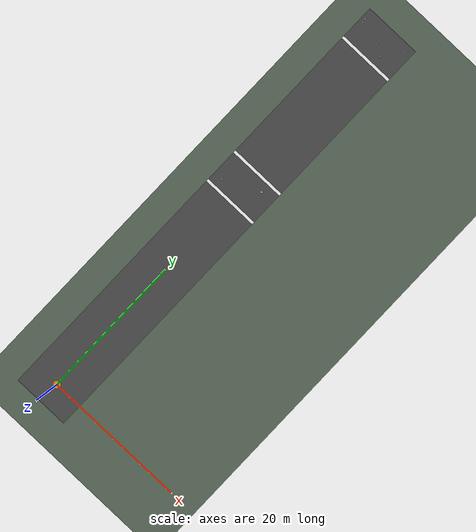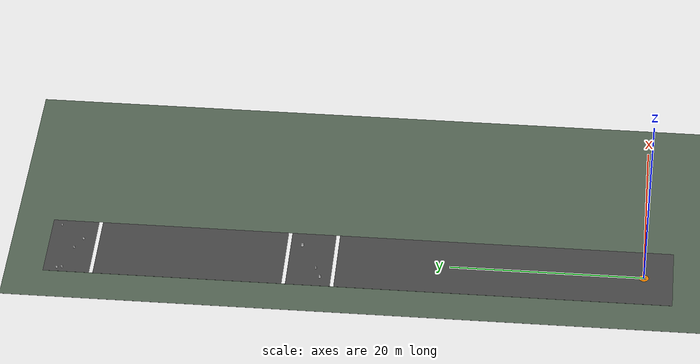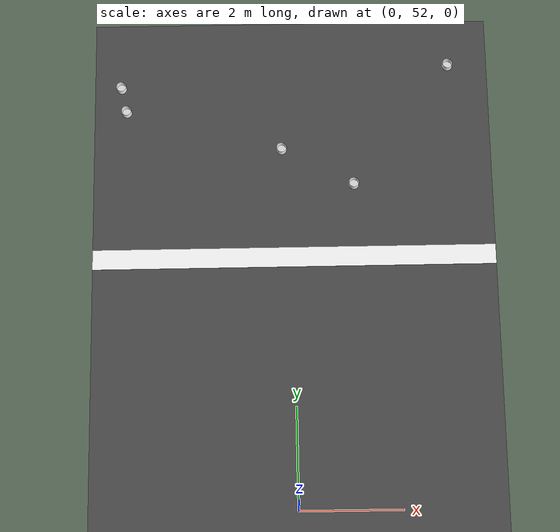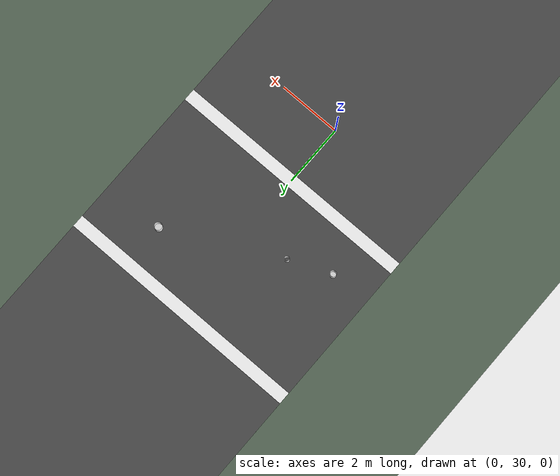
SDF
<?xml version="1.0" ?>
<sdf version="1.11">
  <world name="CUADC_UAV02">

    <!-- ===== Physics & Environment ===== -->
    <physics name="1ms" type="ignored">
      <max_step_size>0.001</max_step_size>
      <real_time_factor>1.0</real_time_factor>
    </physics>
    <gravity>0 0 -9.8</gravity>
    <magnetic_field>6e-06 2.3e-05 -4.2e-05</magnetic_field>
    <atmosphere type="adiabatic"/>

    <spherical_coordinates>
      <surface_model>EARTH_WGS84</surface_model>
      <world_frame_orientation>ENU</world_frame_orientation>
      <latitude_deg>47.397971057728974</latitude_deg>
      <longitude_deg>8.546163739800146</longitude_deg>
      <elevation>0</elevation>
    </spherical_coordinates>

    <!-- World-level system plugins (same as PX4 default) -->
    <plugin filename="gz-sim-physics-system"       name="gz::sim::systems::Physics"/>
    <plugin filename="gz-sim-user-commands-system"  name="gz::sim::systems::UserCommands"/>
    <plugin filename="gz-sim-sensors-system"        name="gz::sim::systems::Sensors">
      <render_engine>ogre2</render_engine>
    </plugin>
    <plugin filename="gz-sim-scene-broadcaster-system" name="gz::sim::systems::SceneBroadcaster"/>
    <plugin filename="gz-sim-contact-system"        name="gz::sim::systems::Contact"/>
    <plugin filename="gz-sim-imu-system"            name="gz::sim::systems::Imu"/>
    <plugin filename="gz-sim-magnetometer-system"   name="gz::sim::systems::Magnetometer"/>
    <plugin filename="gz-sim-navsat-system"         name="gz::sim::systems::NavSat"/>
    <plugin filename="gz-sim-air-pressure-system"   name="gz::sim::systems::AirPressure"/>
    <plugin filename="gz-sim-air-speed-system"      name="gz::sim::systems::AirSpeed"/>
    <plugin filename="gz-sim-apply-link-wrench-system" name="gz::sim::systems::ApplyLinkWrench"/>
    <plugin filename="gz-sim-wind-system"           name="gz::sim::systems::Wind"/>

    <!-- ===== Scene ===== -->
    <scene>
      <ambient>0.5 0.5 0.5 1.0</ambient>
      <background>0.5 0.6 0.8 1.0</background>
      <shadows>true</shadows>
      <grid>false</grid>
    </scene>

    <!-- ===== Sunlight ===== -->
    <light type="directional" name="sun">
      <cast_shadows>true</cast_shadows>
      <pose>0 0 100 0 0 0</pose>
      <diffuse>1.0 1.0 0.95 1</diffuse>
      <specular>0.3 0.3 0.3 1</specular>
      <attenuation>
        <range>1000</range>
        <constant>0.9</constant>
        <linear>0.01</linear>
        <quadratic>0.001</quadratic>
      </attenuation>
      <direction>0.2 -0.3 -0.9</direction>
    </light>

    <!-- ===== GUI ===== -->
    <gui fullscreen="0">
      <plugin filename="MinimalScene" name="3D View">
        <gz-gui>
          <title>3D View</title>
          <property type="bool" key="showTitleBar">false</property>
          <property type="string" key="state">docked</property>
        </gz-gui>
        <engine>ogre2</engine>
        <scene>scene</scene>
        <ambient_light>0.4 0.4 0.4</ambient_light>
        <background_color>0.8 0.8 0.8</background_color>
        <camera_pose>-20 -10 40 0 0.6 0.5</camera_pose>
      </plugin>
      <plugin filename="GzSceneManager" name="Scene Manager">
        <gz-gui>
          <property key="resizable" type="bool">false</property>
          <property key="width" type="double">5</property>
          <property key="height" type="double">5</property>
          <property key="state" type="string">floating</property>
          <property key="showTitleBar" type="bool">false</property>
        </gz-gui>
      </plugin>
      <plugin filename="InteractiveViewControl" name="Interactive view control">
        <gz-gui>
          <property key="resizable" type="bool">false</property>
          <property key="width" type="double">5</property>
          <property key="height" type="double">5</property>
          <property key="state" type="string">floating</property>
          <property key="showTitleBar" type="bool">false</property>
        </gz-gui>
      </plugin>
      <plugin filename="CameraTracking" name="Camera Tracking">
        <gz-gui>
          <property key="resizable" type="bool">false</property>
          <property key="width" type="double">5</property>
          <property key="height" type="double">5</property>
          <property key="state" type="string">floating</property>
          <property key="showTitleBar" type="bool">false</property>
        </gz-gui>
      </plugin>
      <plugin filename="TransformControl" name="Transform control">
        <gz-gui>
          <title>Transform control</title>
          <anchors target="3D View">
            <line own="left" target="left"/>
            <line own="top" target="top"/>
          </anchors>
          <property key="resizable" type="bool">false</property>
          <property key="width" type="double">230</property>
          <property key="height" type="double">50</property>
          <property key="state" type="string">floating</property>
          <property key="showTitleBar" type="bool">false</property>
          <property key="cardBackground" type="string">#666666</property>
        </gz-gui>
      </plugin>
      <plugin filename="WorldControl" name="World control">
        <gz-gui>
          <title>World control</title>
          <property type="bool" key="showTitleBar">false</property>
          <property type="bool" key="resizable">false</property>
          <property type="double" key="height">72</property>
          <property type="double" key="z">1</property>
          <property type="string" key="state">floating</property>
          <anchors target="3D View">
            <line own="left" target="left"/>
            <line own="bottom" target="bottom"/>
          </anchors>
        </gz-gui>
        <play_pause>true</play_pause>
        <step>true</step>
        <start_paused>true</start_paused>
        <use_event>true</use_event>
      </plugin>
      <plugin filename="WorldStats" name="World stats">
        <gz-gui>
          <title>World stats</title>
          <property type="bool" key="showTitleBar">false</property>
          <property type="bool" key="resizable">false</property>
          <property type="double" key="height">110</property>
          <property type="double" key="width">290</property>
          <property type="double" key="z">1</property>
          <property type="string" key="state">floating</property>
          <anchors target="3D View">
            <line own="right" target="right"/>
            <line own="bottom" target="bottom"/>
          </anchors>
        </gz-gui>
        <sim_time>true</sim_time>
        <real_time>true</real_time>
        <real_time_factor>true</real_time_factor>
        <iterations>true</iterations>
      </plugin>
      <plugin filename="ComponentInspector" name="Component inspector">
        <gz-gui>
          <property type="string" key="state">docked_collapsed</property>
        </gz-gui>
      </plugin>
      <plugin filename="EntityTree" name="Entity tree">
        <gz-gui>
          <property type="string" key="state">docked_collapsed</property>
        </gz-gui>
      </plugin>
      <!-- Downward camera display (select topic after drone spawns) -->
      <plugin filename="ImageDisplay" name="Downward Camera">
        <gz-gui>
          <title>Downward Camera</title>
          <property type="string" key="state">docked</property>
        </gz-gui>
        <topic_picker>true</topic_picker>
      </plugin>
      <plugin filename="KeyPublisher" name="Key publisher">
        <gz-gui>
          <anchors target="3D View">
            <line own="right" target="right"/>
            <line own="top" target="top"/>
          </anchors>
          <property key="resizable" type="bool">false</property>
          <property key="width" type="double">5</property>
          <property key="height" type="double">5</property>
          <property key="state" type="string">floating</property>
          <property key="showTitleBar" type="bool">false</property>
        </gz-gui>
      </plugin>
      <plugin filename="EntityContextMenuPlugin" name="Entity context menu">
        <gz-gui>
          <property key="state" type="string">floating</property>
          <property key="width" type="double">5</property>
          <property key="height" type="double">5</property>
          <property key="showTitleBar" type="bool">false</property>
        </gz-gui>
      </plugin>
    </gui>

    <!--  Ground — 300m × 300m flat plane                                  -->
    <model name="ground">
      <static>true</static>
      <pose>0 0 -0.005 0 0 0</pose>
      <link name="ground_link">
        <collision name="ground_collision">
          <geometry>
            <box>
              <size>300 300 0.01</size>
            </box>
          </geometry>
        </collision>
        <visual name="ground_visual">
          <geometry>
            <box>
              <size>300 300 0.01</size>
            </box>
          </geometry>
          <material>
            <ambient>0.3 0.35 0.3 1</ambient>
            <diffuse>0.35 0.42 0.35 1</diffuse>
            <specular>0.05 0.05 0.05 1</specular>
          </material>
        </visual>
      </link>
    </model>

    <!--  Track — dark gray runway 8m × 65m, y: -3 to 62                   -->
    <!--  Centered at (0, 29.5)                                            -->
    <model name="track">
      <static>true</static>
      <pose>0 29.5 0.005 0 0 0</pose>
      <link name="track_link">
        <collision name="track_collision">
          <geometry>
            <box>
              <size>8 65 0.01</size>
            </box>
          </geometry>
        </collision>
        <visual name="track_visual">
          <geometry>
            <box>
              <size>8 65 0.01</size>
            </box>
          </geometry>
          <material>
            <ambient>0.25 0.25 0.25 1</ambient>
            <diffuse>0.3 0.3 0.3 1</diffuse>
            <specular>0.05 0.05 0.05 1</specular>
          </material>
        </visual>
      </link>
    </model>

    <!--  Takeoff pad — orange circle Ø1m at origin (0, 0)                  -->
    <model name="takeoff_pad">
      <static>true</static>
      <pose>0 0 0.012 0 0 0</pose>
      <link name="pad_link">
        <visual name="pad_visual">
          <geometry>
            <cylinder>
              <length>0.005</length>
              <radius>0.5</radius>
            </cylinder>
          </geometry>
          <material>
            <ambient>1.0 0.5 0.0 1</ambient>
            <diffuse>1.0 0.55 0.0 1</diffuse>
            <specular>0.1 0.1 0.1 1</specular>
          </material>
        </visual>
      </link>
    </model>

    <!--  White "H" marker at origin (on the orange pad)                    -->
    <!--  Built from 3 boxes: two vertical + one horizontal                 -->
    <model name="H_marker">
      <static>true</static>
      <pose>0 0 0.016 0 0 0</pose>
      <link name="H_link">
        <!-- Left vertical bar -->
        <visual name="H_left">
          <pose>-0.15 0 0 0 0 0</pose>
          <geometry>
            <box>
              <size>0.08 0.5 0.005</size>
            </box>
          </geometry>
          <material>
            <ambient>1 1 1 1</ambient>
            <diffuse>1 1 1 1</diffuse>
          </material>
        </visual>
        <!-- Right vertical bar -->
        <visual name="H_right">
          <pose>0.15 0 0 0 0 0</pose>
          <geometry>
            <box>
              <size>0.08 0.5 0.005</size>
            </box>
          </geometry>
          <material>
            <ambient>1 1 1 1</ambient>
            <diffuse>1 1 1 1</diffuse>
          </material>
        </visual>
        <!-- Horizontal crossbar -->
        <visual name="H_cross">
          <pose>0 0 0 0 0 0</pose>
          <geometry>
            <box>
              <size>0.3 0.08 0.005</size>
            </box>
          </geometry>
          <material>
            <ambient>1 1 1 1</ambient>
            <diffuse>1 1 1 1</diffuse>
          </material>
        </visual>
      </link>
    </model>

    <!--  Gate lines — white stripes across the track                      -->
    <!--  Line 1: y = 32  (±0.2 → 31.8 .. 32.2)                            -->
    <!--  Line 2: y = 37  (±0.2 → 36.8 .. 37.2)                            -->
    <!--  Line 3: y = 57  (±0.2 → 56.8 .. 57.2)                            -->

    <model name="gate_line_1">
      <static>true</static>
      <pose>0 32 0.014 0 0 0</pose>
      <link name="line1_link">
        <visual name="line1_visual">
          <geometry>
            <box>
              <size>8 0.4 0.005</size>
            </box>
          </geometry>
          <material>
            <ambient>1 1 1 1</ambient>
            <diffuse>1 1 1 1</diffuse>
          </material>
        </visual>
      </link>
    </model>

    <model name="gate_line_2">
      <static>true</static>
      <pose>0 37 0.014 0 0 0</pose>
      <link name="line2_link">
        <visual name="line2_visual">
          <geometry>
            <box>
              <size>8 0.4 0.005</size>
            </box>
          </geometry>
          <material>
            <ambient>1 1 1 1</ambient>
            <diffuse>1 1 1 1</diffuse>
          </material>
        </visual>
      </link>
    </model>

    <model name="gate_line_3">
      <static>true</static>
      <pose>0 57 0.014 0 0 0</pose>
      <link name="line3_link">
        <visual name="line3_visual">
          <geometry>
            <box>
              <size>8 0.4 0.005</size>
            </box>
          </geometry>
          <material>
            <ambient>1 1 1 1</ambient>
            <diffuse>1 1 1 1</diffuse>
          </material>
        </visual>
      </link>
    </model>

    <!--  Region 1 — Cylinders (y:32..37), H=30cm, white hollow tubes       -->
    <!--  C1: D=15cm   C2: D=20cm   C3: D=25cm                              -->

    <!-- Cylinder 1: D=15cm, H=30cm, wall 3mm -->
    <model name="cylinder_R1_01">
      <static>true</static>
      <pose>-1.42 33.87 0.16 0 0 0</pose>
      <link name="cyl1_link">
        <collision name="cyl1_collision">
          <geometry>
            <cylinder>
              <length>0.3</length>
              <radius>0.075</radius>
            </cylinder>
          </geometry>
        </collision>
        <visual name="cyl1_visual">
          <geometry>
            <mesh><uri>file:///home/jay/px4_ws/gazebo_models/models/tube_D15_H30.obj</uri></mesh>
          </geometry>
          <material>
            <ambient>0.9 0.9 0.9 1</ambient>
            <diffuse>0.95 0.95 0.95 1</diffuse>
            <specular>0.1 0.1 0.1 1</specular>
          </material>
        </visual>
      </link>
    </model>

    <!-- Cylinder 2: D=20cm, H=30cm, wall 3mm -->
    <model name="cylinder_R1_02">
      <static>true</static>
      <pose>-2.73 33.33 0.16 0 0 0</pose>
      <link name="cyl2_link">
        <collision name="cyl2_collision">
          <geometry>
            <cylinder>
              <length>0.3</length>
              <radius>0.1</radius>
            </cylinder>
          </geometry>
        </collision>
        <visual name="cyl2_visual">
          <geometry>
            <mesh><uri>file:///home/jay/px4_ws/gazebo_models/models/tube_D20_H30.obj</uri></mesh>
          </geometry>
          <material>
            <ambient>0.9 0.9 0.9 1</ambient>
            <diffuse>0.95 0.95 0.95 1</diffuse>
            <specular>0.1 0.1 0.1 1</specular>
          </material>
        </visual>
        <visual name="cyl2_base">
          <pose>0 0 -0.1475 0 0 0</pose>
          <geometry>
            <cylinder>
              <length>0.005</length>
              <radius>0.1</radius>
            </cylinder>
          </geometry>
          <material>
            <ambient>0.8 0.8 0.8 1</ambient>
            <diffuse>0.88 0.88 0.88 1</diffuse>
            <specular>0.05 0.05 0.05 1</specular>
          </material>
        </visual>
      </link>
    </model>

    <!-- Cylinder 3: D=25cm, H=30cm, wall 3mm -->
    <model name="cylinder_R1_03">
      <static>true</static>
      <pose>2.06 35.60 0.16 0 0 0</pose>
      <link name="cyl3_link">
        <collision name="cyl3_collision">
          <geometry>
            <cylinder>
              <length>0.3</length>
              <radius>0.125</radius>
            </cylinder>
          </geometry>
        </collision>
        <visual name="cyl3_visual">
          <geometry>
            <mesh><uri>file:///home/jay/px4_ws/gazebo_models/models/tube_D25_H30.obj</uri></mesh>
          </geometry>
          <material>
            <ambient>0.9 0.9 0.9 1</ambient>
            <diffuse>0.95 0.95 0.95 1</diffuse>
            <specular>0.1 0.1 0.1 1</specular>
          </material>
        </visual>
        <visual name="cyl3_base">
          <pose>0 0 -0.1475 0 0 0</pose>
          <geometry>
            <cylinder>
              <length>0.005</length>
              <radius>0.125</radius>
            </cylinder>
          </geometry>
          <material>
            <ambient>0.8 0.8 0.8 1</ambient>
            <diffuse>0.88 0.88 0.88 1</diffuse>
            <specular>0.05 0.05 0.05 1</specular>
          </material>
        </visual>
      </link>
    </model>

    <!--  Region 2 — Cylinders (y:57..62), H=15cm, D=20cm, white tubes     -->
    <!--  3 of 5 contain 12×12cm hazard chemical signs                      -->

    <!-- Cylinder 4: D=20cm, H=15cm + hazard sign -->
    <model name="cylinder_R2_04">
      <static>true</static>
      <pose>3.20 61.01 0.085 0 0 0</pose>
      <link name="cyl4_link">
        <collision name="cyl4_collision">
          <geometry>
            <cylinder>
              <length>0.15</length>
              <radius>0.1</radius>
            </cylinder>
          </geometry>
        </collision>
        <visual name="cyl4_visual">
          <geometry>
            <mesh><uri>file:///home/jay/px4_ws/gazebo_models/models/tube_D20_H15.obj</uri></mesh>
          </geometry>
          <material>
            <ambient>0.9 0.9 0.9 1</ambient>
            <diffuse>0.95 0.95 0.95 1</diffuse>
            <specular>0.1 0.1 0.1 1</specular>
          </material>
        </visual>
        <visual name="cyl4_base">
          <pose>0 0 -0.0725 0 0 0</pose>
          <geometry>
            <cylinder>
              <length>0.005</length>
              <radius>0.1</radius>
            </cylinder>
          </geometry>
          <material>
            <ambient>0.8 0.8 0.8 1</ambient>
            <diffuse>0.88 0.88 0.88 1</diffuse>
            <specular>0.05 0.05 0.05 1</specular>
          </material>
        </visual>
      </link>
    </model>

    <!-- Hazard sign inside cylinder 4 -->
    <model name="hazard_C4">
      <static>true</static>
      <pose>3.20 61.01 0.013 0 0 0</pose>
      <link name="haz4_link">
        <visual name="haz4_visual">
          <geometry>
            <box>
              <size>0.12 0.12 0.003</size>
            </box>
          </geometry>
          <material>
            <ambient>1.0 0.2 0.0 1</ambient>
            <diffuse>1.0 0.3 0.0 1</diffuse>
          </material>
        </visual>
      </link>
    </model>

    <!-- Cylinder 5: D=20cm, H=15cm + hazard sign -->
    <model name="cylinder_R2_05">
      <static>true</static>
      <pose>1.22 58.49 0.085 0 0 0</pose>
      <link name="cyl5_link">
        <collision name="cyl5_collision">
          <geometry>
            <cylinder>
              <length>0.15</length>
              <radius>0.1</radius>
            </cylinder>
          </geometry>
        </collision>
        <visual name="cyl5_visual">
          <geometry>
            <mesh><uri>file:///home/jay/px4_ws/gazebo_models/models/tube_D20_H15.obj</uri></mesh>
          </geometry>
          <material>
            <ambient>0.9 0.9 0.9 1</ambient>
            <diffuse>0.95 0.95 0.95 1</diffuse>
            <specular>0.1 0.1 0.1 1</specular>
          </material>
        </visual>
        <visual name="cyl5_base">
          <pose>0 0 -0.0725 0 0 0</pose>
          <geometry>
            <cylinder>
              <length>0.005</length>
              <radius>0.1</radius>
            </cylinder>
          </geometry>
          <material>
            <ambient>0.8 0.8 0.8 1</ambient>
            <diffuse>0.88 0.88 0.88 1</diffuse>
            <specular>0.05 0.05 0.05 1</specular>
          </material>
        </visual>
      </link>
    </model>

    <!-- Hazard sign inside cylinder 5 -->
    <model name="hazard_C5">
      <static>true</static>
      <pose>1.22 58.49 0.013 0 0 0</pose>
      <link name="haz5_link">
        <visual name="haz5_visual">
          <geometry>
            <box>
              <size>0.12 0.12 0.003</size>
            </box>
          </geometry>
          <material>
            <ambient>1.0 0.2 0.0 1</ambient>
            <diffuse>1.0 0.3 0.0 1</diffuse>
          </material>
        </visual>
      </link>
    </model>

    <!-- Cylinder 6: D=20cm, H=15cm + hazard sign -->
    <model name="cylinder_R2_06">
      <static>true</static>
      <pose>-3.35 60.09 0.085 0 0 0</pose>
      <link name="cyl6_link">
        <collision name="cyl6_collision">
          <geometry>
            <cylinder>
              <length>0.15</length>
              <radius>0.1</radius>
            </cylinder>
          </geometry>
        </collision>
        <visual name="cyl6_visual">
          <geometry>
            <mesh><uri>file:///home/jay/px4_ws/gazebo_models/models/tube_D20_H15.obj</uri></mesh>
          </geometry>
          <material>
            <ambient>0.9 0.9 0.9 1</ambient>
            <diffuse>0.95 0.95 0.95 1</diffuse>
            <specular>0.1 0.1 0.1 1</specular>
          </material>
        </visual>
        <visual name="cyl6_base">
          <pose>0 0 -0.0725 0 0 0</pose>
          <geometry>
            <cylinder>
              <length>0.005</length>
              <radius>0.1</radius>
            </cylinder>
          </geometry>
          <material>
            <ambient>0.8 0.8 0.8 1</ambient>
            <diffuse>0.88 0.88 0.88 1</diffuse>
            <specular>0.05 0.05 0.05 1</specular>
          </material>
        </visual>
      </link>
    </model>

    <!-- Hazard sign inside cylinder 6 -->
    <model name="hazard_C6">
      <static>true</static>
      <pose>-3.35 60.09 0.013 0 0 0</pose>
      <link name="haz6_link">
        <visual name="haz6_visual">
          <geometry>
            <box>
              <size>0.12 0.12 0.003</size>
            </box>
          </geometry>
          <material>
            <ambient>1.0 0.2 0.0 1</ambient>
            <diffuse>1.0 0.3 0.0 1</diffuse>
          </material>
        </visual>
      </link>
    </model>

    <!-- Cylinder 7: D=20cm, H=15cm (no hazard sign) -->
    <model name="cylinder_R2_07">
      <static>true</static>
      <pose>-0.22 59.25 0.085 0 0 0</pose>
      <link name="cyl7_link">
        <collision name="cyl7_collision">
          <geometry>
            <cylinder>
              <length>0.15</length>
              <radius>0.1</radius>
            </cylinder>
          </geometry>
        </collision>
        <visual name="cyl7_visual">
          <geometry>
            <mesh><uri>file:///home/jay/px4_ws/gazebo_models/models/tube_D20_H15.obj</uri></mesh>
          </geometry>
          <material>
            <ambient>0.9 0.9 0.9 1</ambient>
            <diffuse>0.95 0.95 0.95 1</diffuse>
            <specular>0.1 0.1 0.1 1</specular>
          </material>
        </visual>
        <visual name="cyl7_base">
          <pose>0 0 -0.0725 0 0 0</pose>
          <geometry>
            <cylinder>
              <length>0.005</length>
              <radius>0.1</radius>
            </cylinder>
          </geometry>
          <material>
            <ambient>0.8 0.8 0.8 1</ambient>
            <diffuse>0.88 0.88 0.88 1</diffuse>
            <specular>0.05 0.05 0.05 1</specular>
          </material>
        </visual>
      </link>
    </model>

    <!-- Cylinder 8: D=20cm, H=15cm (no hazard sign) -->
    <model name="cylinder_R2_08">
      <static>true</static>
      <pose>-3.46 60.61 0.085 0 0 0</pose>
      <link name="cyl8_link">
        <collision name="cyl8_collision">
          <geometry>
            <cylinder>
              <length>0.15</length>
              <radius>0.1</radius>
            </cylinder>
          </geometry>
        </collision>
        <visual name="cyl8_visual">
          <geometry>
            <mesh><uri>file:///home/jay/px4_ws/gazebo_models/models/tube_D20_H15.obj</uri></mesh>
          </geometry>
          <material>
            <ambient>0.9 0.9 0.9 1</ambient>
            <diffuse>0.95 0.95 0.95 1</diffuse>
            <specular>0.1 0.1 0.1 1</specular>
          </material>
        </visual>
        <visual name="cyl8_base">
          <pose>0 0 -0.0725 0 0 0</pose>
          <geometry>
            <cylinder>
              <length>0.005</length>
              <radius>0.1</radius>
            </cylinder>
          </geometry>
          <material>
            <ambient>0.8 0.8 0.8 1</ambient>
            <diffuse>0.88 0.88 0.88 1</diffuse>
            <specular>0.05 0.05 0.05 1</specular>
          </material>
        </visual>
      </link>
    </model>

    <!--  Drone spawn marker — green dot at origin                          -->
    <model name="drone_spawn">
      <static>true</static>
      <pose>0 0 0.02 0 0 0</pose>
      <link name="spawn_link">
        <visual name="spawn_visual">
          <geometry>
            <cylinder>
              <length>0.005</length>
              <radius>0.15</radius>
            </cylinder>
          </geometry>
          <material>
            <ambient>0 1 0 0.6</ambient>
            <diffuse>0 1 0 0.6</diffuse>
          </material>
        </visual>
      </link>
    </model>

  </world>
</sdf>
